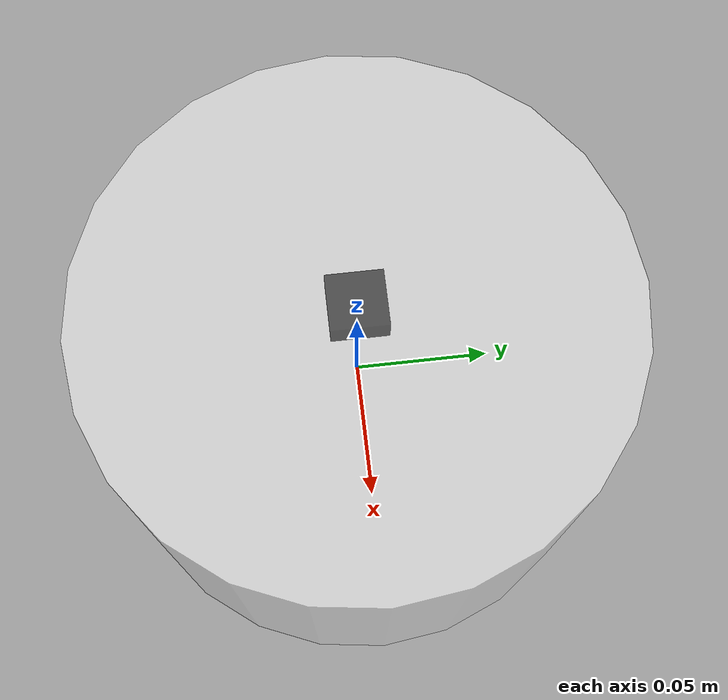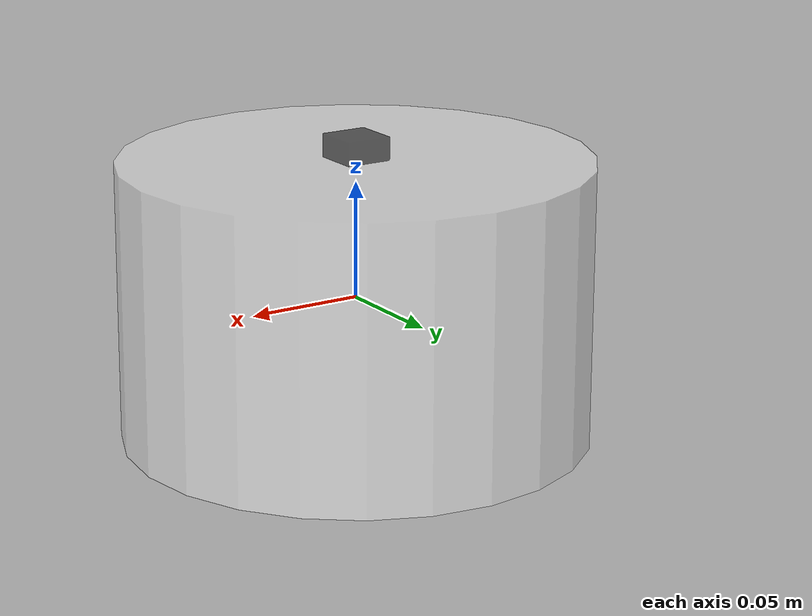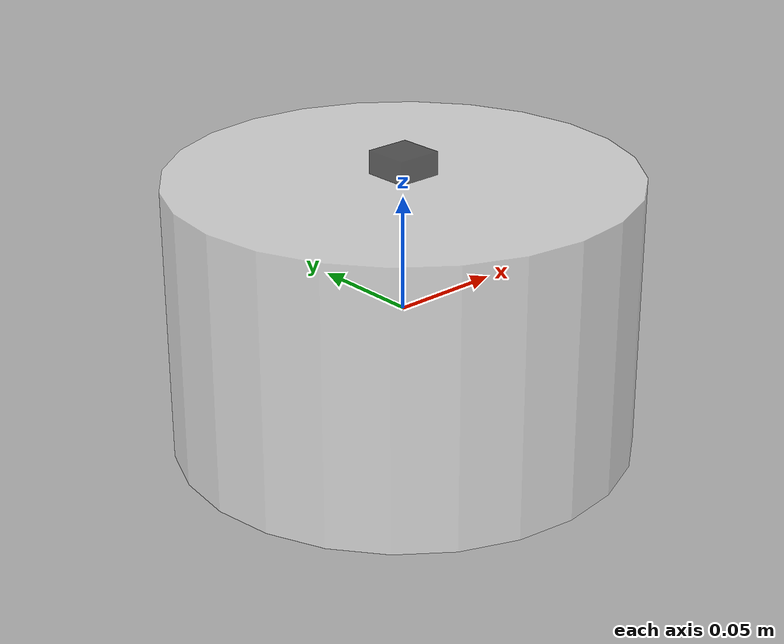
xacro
<?xml version="1.0"?>
<robot xmlns:xacro="http://www.ros.org/wiki/xacro" name="robot_name">
    <!-- 定义宏：基础链接（圆柱体） -->
    <xacro:macro name="base_link" params="length radius">
        <!-- base_link -->
        <link name="base_link">
            <!-- 可视化部分（修正拼写错误：viaual → visual） -->
            <visual>
                <origin xyz="0.0 0.0 0.0" rpy="0.0 0.0 0.0" />
                <!-- 几何形状（修正拼写错误：cyliner → cylinder） -->
                <geometry>
                    <cylinder radius="${radius}" length="${length}" />
                </geometry>
                <!-- 颜色 -->
                <material name="white">
                    <color rgba="1.0 1.0 1.0 0.5" />
                </material>
            </visual>

            <!-- 碰撞模型（Gazebo物理碰撞检测用） -->
            <collision>
                <origin xyz="0.0 0.0 0.0" rpy="0.0 0.0 0.0" />
                <geometry>
                    <cylinder radius="${radius}" length="${length}" />
                </geometry>
            </collision>

            <!-- 惯性参数（Gazebo物理仿真必需） -->
            <inertial>
                <mass value="1.0" /> <!-- 质量1kg -->
                <!-- 圆柱体转动惯量近似计算（针对z轴对称） -->
                <inertia ixx="0.01" ixy="0.0" ixz="0.0"
                         iyy="0.01" iyz="0.0"
                         izz="0.005" />
            </inertial>
        </link>

        <!-- Gazebo扩展配置（指定物理属性） -->
        <gazebo reference="base_link">
            <material>Gazebo/White</material> <!-- Gazebo兼容材质 -->
            <damping>0.01</damping> <!-- 阻尼系数 -->
            <friction>0.8</friction> <!-- 摩擦系数 -->
        </gazebo>
    </xacro:macro>

    <!-- 定义宏：IMU链接（立方体） -->
    <xacro:macro name="imu_link" params="imu_name">
        <!-- imu_link -->
        <link name="${imu_name}">
            <!-- 可视化部分（修正拼写错误：viaual → visual） -->
            <visual>
                <origin xyz="0.0 0.0 0.0" rpy="0.0 0.0 0.0" />
                <geometry>
                    <box size="0.02 0.02 0.02" /> <!-- 2cm立方体 -->
                </geometry>
                <material name="black">
                    <color rgba="0.0 0.0 0.0 0.5" />
                </material>
            </visual>

            <!-- 碰撞模型 -->
            <collision>
                <origin xyz="0.0 0.0 0.0" rpy="0.0 0.0 0.0" />
                <geometry>
                    <box size="0.02 0.02 0.02" />
                </geometry>
            </collision>

            <!-- 惯性参数（IMU质量较小） -->
            <inertial>
                <mass value="0.05" /> <!-- 质量50g -->
                <inertia ixx="0.000001" ixy="0.0" ixz="0.0"
                         iyy="0.000001" iyz="0.0"
                         izz="0.000001" />
            </inertial>
        </link>

        <!-- Gazebo扩展配置 -->
        <gazebo reference="${imu_name}">
            <material>Gazebo/Black</material>
        </gazebo>
    </xacro:macro>

    <!-- 实例化链接 -->
    <xacro:base_link length="0.12" radius="0.10"/> <!-- 长度0.12m，半径0.10m的圆柱体 -->
    <xacro:imu_link imu_name="imu_link"/>

    <!-- 关节：连接base_link和imu_link（固定关节） -->
    <joint name="base_imu" type="fixed">
        <parent link="base_link"/>
        <child link="imu_link"/>
        <origin xyz="0 0 ${0.12/2}" rpy="0 0 0"/> <!-- 将IMU放在base_link顶端（length/2处） -->
        <!-- 固定关节无需旋转轴，可省略axis标签 -->
    </joint>
</robot>
